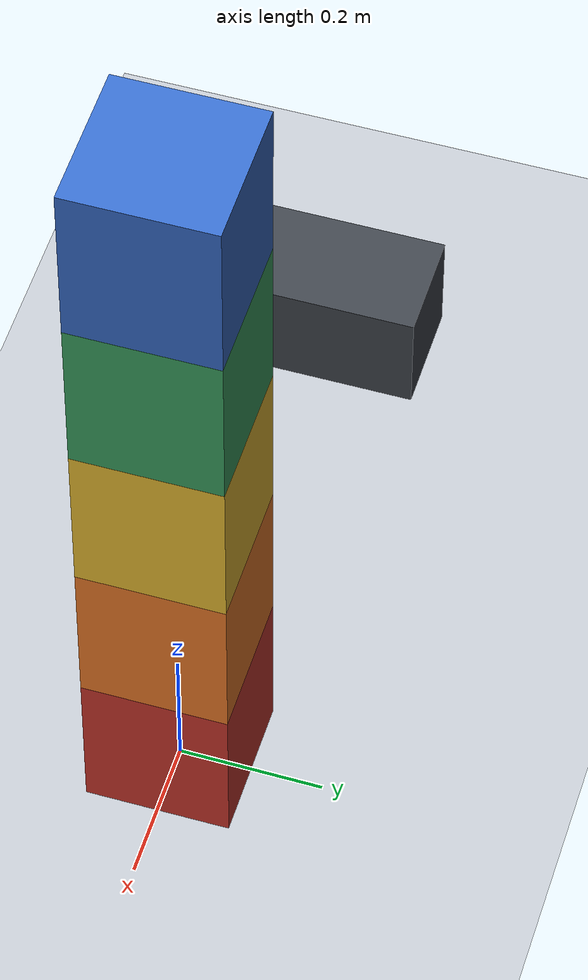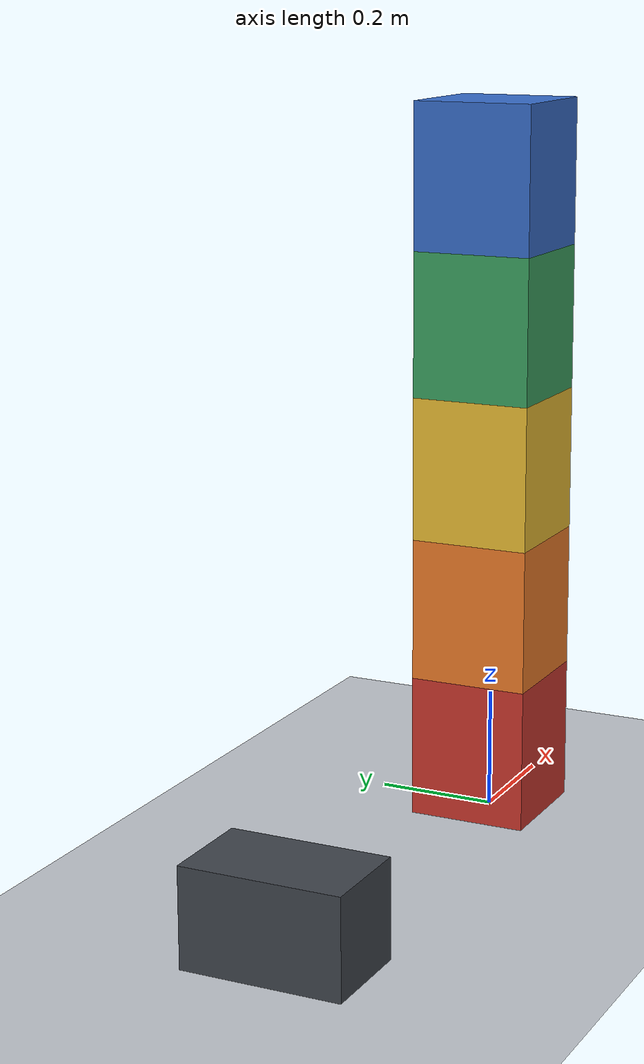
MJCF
<mujoco model="five_block_topple">
  <compiler angle="radian"/>
  <option timestep="0.002" gravity="0 0 -9.81" integrator="implicitfast" iterations="100"/>
  <size nconmax="200" njmax="1000"/>

  <visual>
    <headlight ambient="0.35 0.35 0.35" diffuse="0.7 0.7 0.7" specular="0.2 0.2 0.2"/>
  </visual>

  <worldbody>
    <light name="overhead" pos="-1 -2 4" dir="0.2 0.3 -1" directional="true"/>
    <camera name="overview" pos="2.4 -3.4 2.0" xyaxes="0.816 0.577 0 -0.195 0.276 0.941"/>

    <geom name="floor" type="plane" pos="0 0 0" size="4 4 0.1" friction="0.6 0.005 0.0001" rgba="0.76 0.78 0.81 1"/>

    <body name="block1" pos="0 0 0.12">
      <freejoint name="block1_free"/>
      <geom name="block1_geom" type="box" size="0.10 0.10 0.12" mass="0.65" friction="0.6 0.005 0.0001" solref="0.01 1" solimp="0.95 0.99 0.001" rgba="0.80 0.22 0.18 1"/>
    </body>

    <body name="block2" pos="0 0 0.36">
      <freejoint name="block2_free"/>
      <geom name="block2_geom" type="box" size="0.10 0.10 0.12" mass="0.65" friction="0.6 0.005 0.0001" solref="0.01 1" solimp="0.95 0.99 0.001" rgba="0.94 0.49 0.16 1"/>
    </body>

    <body name="block3" pos="0 0 0.60">
      <freejoint name="block3_free"/>
      <geom name="block3_geom" type="box" size="0.10 0.10 0.12" mass="0.65" friction="0.6 0.005 0.0001" solref="0.01 1" solimp="0.95 0.99 0.001" rgba="0.93 0.75 0.20 1"/>
    </body>

    <body name="block4" pos="0 0 0.84">
      <freejoint name="block4_free"/>
      <geom name="block4_geom" type="box" size="0.10 0.10 0.12" mass="0.65" friction="0.6 0.005 0.0001" solref="0.01 1" solimp="0.95 0.99 0.001" rgba="0.23 0.64 0.38 1"/>
    </body>

    <body name="block5" pos="0 0 1.08">
      <freejoint name="block5_free"/>
      <geom name="block5_geom" type="box" size="0.10 0.10 0.12" mass="0.65" friction="0.6 0.005 0.0001" solref="0.01 1" solimp="0.95 0.99 0.001" rgba="0.22 0.43 0.80 1"/>
    </body>

    <!-- The initially stretched spring supplies the push without external controls. -->
    <body name="pusher" pos="-0.75 0 0.09">
      <joint name="pusher_slide" type="slide" axis="1 0 0" limited="true" range="0 1.1" stiffness="160" springref="1.1" damping="40"/>
      <geom name="pusher_geom" type="box" size="0.08 0.13 0.08" mass="2" friction="0.6 0.005 0.0001" solref="0.01 1" solimp="0.95 0.99 0.001" rgba="0.25 0.27 0.30 1"/>
    </body>
  </worldbody>

  <keyframe>
    <key name="start"/>
  </keyframe>
</mujoco>
